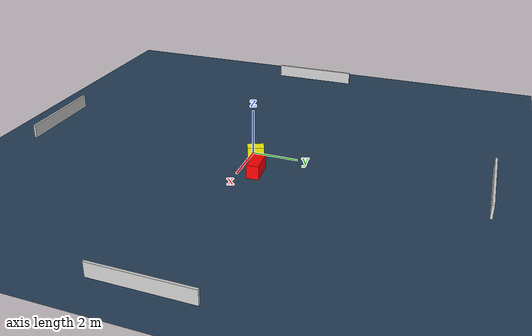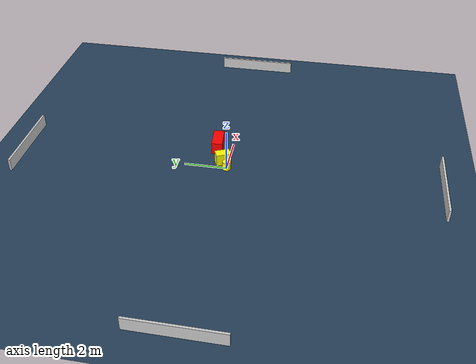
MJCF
<?xml version="1.0" ?>
<mujoco model="generated_environment">
  <option timestep="0.01" integrator="RK4" cone="elliptic"/>
  <default>
    <geom density="1"/>
  </default>
  <asset>
    <texture builtin="gradient" height="3072" name="skybox" rgb1="0.3 0.5 0.7" rgb2="0 0 0" type="skybox" width="512"/>
    <texture builtin="checker" height="300" name="groundplane" rgb1="0.2 0.3 0.4" rgb2="0.1 0.2 0.3" type="2d" width="300"/>
    <material name="groundplane" reflectance="0.2" texrepeat="5 5" texture="groundplane"/>
  </asset>
  <worldbody>
    <light dir="0 0 -1" directional="true" pos="0 0 1.5"/>
    <geom condim="3" friction="0.5 0.005 0.001" material="groundplane" name="floor" pos="0 0 0" size="0 0 0.05" type="plane"/>
    <body name="walls">
      <geom name="wall_1" condim="4" pos="-10.0 0.0 0.3" rgba="0.800000011920929 0.800000011920929 0.800000011920929 1.0" size="0.05 2.0 0.3" type="box"/>
      <geom name="wall_2" condim="4" pos="10.0 0.0 0.3" rgba="0.800000011920929 0.800000011920929 0.800000011920929 1.0" size="0.05 2.0 0.3" type="box"/>
      <geom name="wall_3" condim="4" pos="0.0 -10.0 0.3" rgba="0.800000011920929 0.800000011920929 0.800000011920929 1.0" size="2.0 0.05 0.3" type="box"/>
      <geom name="wall_4" condim="4" pos="0.0 10.0 0.3" rgba="0.800000011920929 0.800000011920929 0.800000011920929 1.0" size="2.0 0.05 0.3" type="box"/>
    </body>
    <body name="robot">
      <joint name="joint_x" type="slide" pos="0 0 0" axis="1 0 0"/>
      <joint name="joint_y" type="slide" pos="0 0 0" axis="0 1 0"/>
      <geom name="robot" type="cylinder" pos="0.0 0.0 0.2" size="0.2 0.2 0.0" mass="5.0" friction="1.0 0.005 0.0001" condim="4" rgba="1.0 1.0 0.0 1.0"/>
    </body>
    <body name="obstacle_1_movable">
      <geom name="obstacle_1_movable" condim="4" pos="0.428781808664218 0.2608241930513821 0.3" euler="0 0 293.83966490461546" friction="0.0 0.005 0.001" rgba="1.0 1.0 0.0 1.0" size="0.3577347963314772 0.22153761977578704 0.3" type="box" mass="0.1"/>
      <joint type="free"/>
    </body>
    <body name="obstacle_2_static">
      <geom name="obstacle_2_static" condim="4" pos="1.644111347970686 0.7271139163735036 0.3" euler="0 0 275.07206108747715" friction="0.0 0.005 0.001" rgba="1.0 0.0 0.0 1.0" size="0.25954390463073196 0.5814302309826385 0.3" type="box"/>
    </body>
  </worldbody>
  <actuator>
    <motor name="actuator_x" joint="joint_x" gear="1" ctrlrange="-1 1"/>
    <motor name="actuator_y" joint="joint_y" gear="1" ctrlrange="-1 1"/>
  </actuator>
</mujoco>
